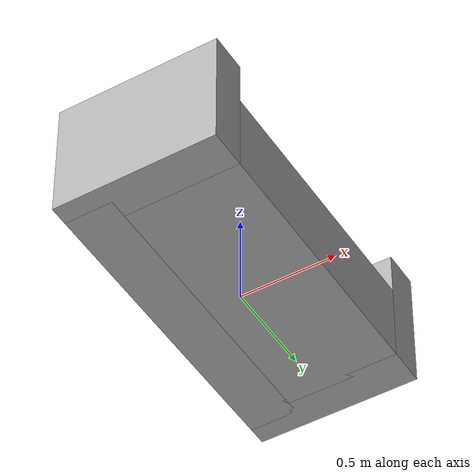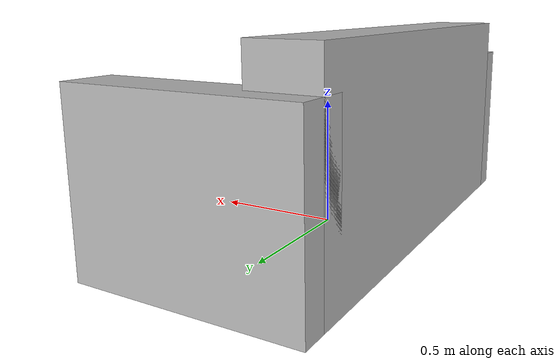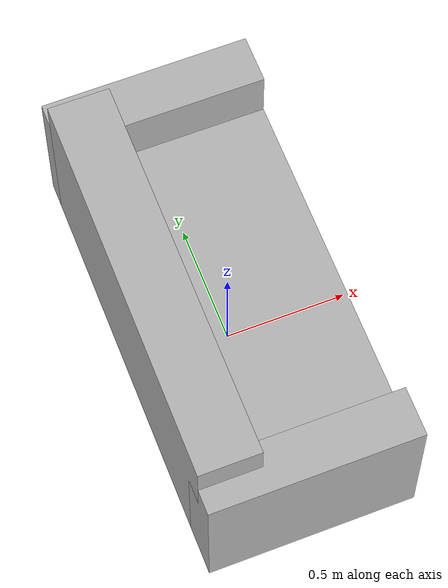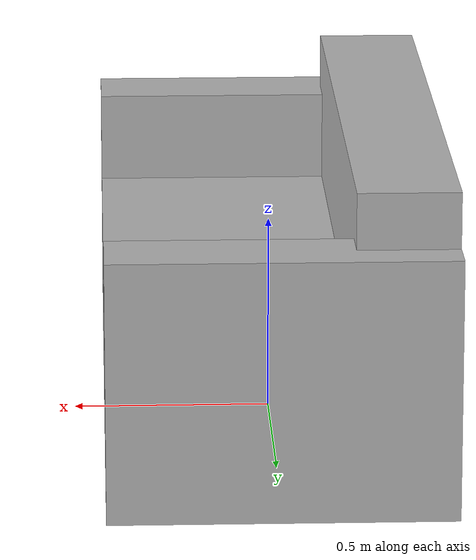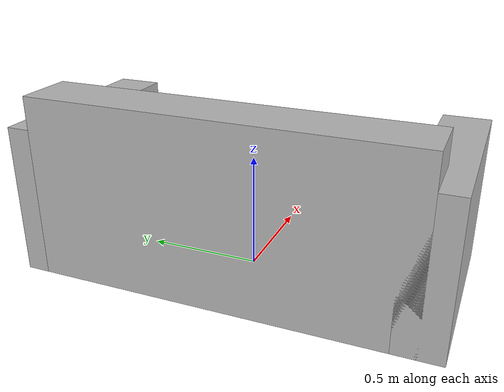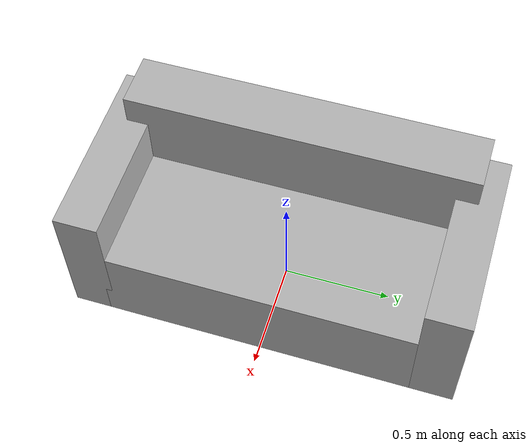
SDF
<?xml version="1.0"?>
<sdf version="1.6">
  <model name="impuls/couch_short">
    <link name="back">
      <collision name="back_col">
        <geometry>
          <box>
            <size>0.25 1.6 0.79</size>
          </box>
        </geometry>
      </collision>
      <visual name="back_vis">
        <geometry>
          <box>
            <size>0.25 1.6 0.79</size>
          </box>
        </geometry>
      </visual>
      <pose>-0.3 0.0 0.395 0 0 0</pose>
    </link>
    <link name="side_right">
      <collision name="side_right_col">
        <geometry>
          <box>
            <size>0.85 0.20 0.65</size>
          </box>
        </geometry>
      </collision>
      <visual name="side_right_vis">
        <geometry>
          <box>
            <size>0.85 0.20 0.65</size>
          </box>
        </geometry>
      </visual>
      <pose>0.0 0.80 0.325 0 0 0</pose>
    </link>
    <link name="side_left">
      <collision name="side_left_col">
        <geometry>
          <box>
            <size>0.85 0.20 0.65</size>
          </box>
        </geometry>
      </collision>
      <visual name="side_left_vis">
        <geometry>
          <box>
            <size>0.85 0.20 0.65</size>
          </box>
        </geometry>
      </visual>
      <pose>-0 -0.80 0.325 0 0 0</pose>
    </link>
    <link name="seat">
      <collision name="seat_col">
        <geometry>
          <box>
            <size>0.60 1.46 0.42</size>
          </box>
        </geometry>
      </collision>
      <visual name="seat_vis">
        <geometry>
          <box>
            <size>0.60 1.46 0.42</size>
          </box>
        </geometry>
      </visual>
      <pose>0.125 0 0.21 0 0 0</pose>
    </link>
    <link name="in_front_of">
      <virtual_volume name="in_front_of_vv">
        <geometry>
          <box>
            <size>0.2 1.55 0.01</size>
          </box>
        </geometry>
        <pose>0.65 0.0 0.005 0 0 0</pose>
      </virtual_volume>
    </link>
    <link name="on_top_of">
      <virtual_volume name="on_top_of_vv">
        <geometry>
          <box>
            <size>0.60 1.40 0.3</size>
          </box>
        </geometry>
        <pose>0.125 0.0 0.57 0 0 0</pose>
      </virtual_volume>
    </link>
    <link name="on_top_of_left">
      <virtual_volume name="on_top_of_left_vv">
        <geometry>
          <box>
            <size>0.60 0.69 0.3</size>
          </box>
        </geometry>
        <pose>0.125 0.35 0.57 0 0 0</pose>
      </virtual_volume>
    </link>
    <link name="on_top_of_right">
      <virtual_volume name="on_top_of_right_vv">
        <geometry>
          <box>
            <size>0.60 0.69 0.3</size>
          </box>
        </geometry>
        <pose>0.125 -0.35 0.57 0 0 0</pose>
      </virtual_volume>
    </link>
    <static>true</static>
  </model>
</sdf>
